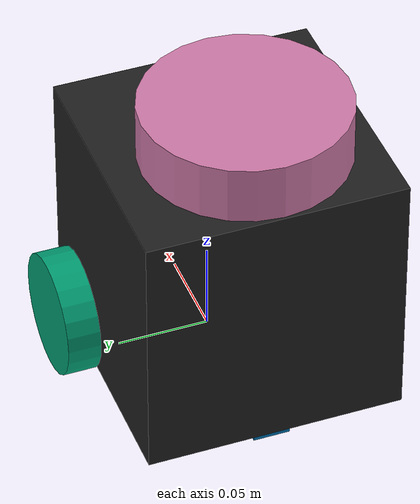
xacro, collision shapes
<?xml version="1.0" ?>
<robot name="turtlebot3_burger"
  xmlns:xacro="http://ros.org/wiki/xacro">
  <xacro:include filename="$(find custom_robot_description)/urdf/common_properties.urdf"/>

  <xacro:arg name="namespace" default=""/>
  <xacro:property name="namespace" value="$(arg namespace)"/>

  <link name="${namespace}base_footprint"/>

  <joint name="${namespace}base_joint" type="fixed">
    <parent link="${namespace}base_footprint"/>
    <child link="${namespace}base_link"/>
    <origin xyz="0.0 0.0 0.010" rpy="0 0 0"/>
  </joint>

  <link name="${namespace}base_link">
    <visual>
      <origin xyz="-0.032 0 0.0" rpy="0 0 0"/>
      <geometry>
        <mesh filename="package://custom_robot_description/meshes/bases/burger_base.stl" scale="0.001 0.001 0.001"/>
      </geometry>
      <material name="light_black"/>
    </visual>

    <collision>
      <origin xyz="-0.032 0 0.070" rpy="0 0 0"/>
      <geometry>
        <box size="0.140 0.140 0.143"/>
      </geometry>
    </collision>

    <inertial>
      <origin xyz="0 0 0" rpy="0 0 0"/>
      <mass value="8.2573504e-01"/>
      <inertia ixx="2.2124416e-03" ixy="-1.2294101e-05" ixz="3.4938785e-05" iyy="2.1193702e-03" iyz="-5.0120904e-06" izz="2.0064271e-03" />
    </inertial>
  </link>

  <joint name="${namespace}wheel_left_joint" type="continuous">
    <parent link="${namespace}base_link"/>
    <child link="${namespace}wheel_left_link"/>
    <origin xyz="0.0 0.08 0.023" rpy="-1.57 0 0"/>
    <axis xyz="0 0 1"/>
  </joint>

  <link name="${namespace}wheel_left_link">
    <visual>
      <origin xyz="0 0 0" rpy="1.57 0 0"/>
      <geometry>
        <mesh filename="package://custom_robot_description/meshes/wheels/left_tire.stl" scale="0.001 0.001 0.001"/>
      </geometry>
      <material name="dark"/>
    </visual>

    <collision>
      <origin xyz="0 0 0" rpy="0 0 0"/>
      <geometry>
        <cylinder length="0.018" radius="0.033"/>
      </geometry>
    </collision>

    <inertial>
      <origin xyz="0 0 0" />
      <mass value="2.8498940e-02" />
      <inertia ixx="1.1175580e-05" ixy="-4.2369783e-11" ixz="-5.9381719e-09" iyy="1.1192413e-05" iyz="-1.4400107e-11" izz="2.0712558e-05" />
    </inertial>
  </link>

  <joint name="${namespace}wheel_right_joint" type="continuous">
    <parent link="${namespace}base_link"/>
    <child link="${namespace}wheel_right_link"/>
    <origin xyz="0.0 -0.080 0.023" rpy="-1.57 0 0"/>
    <axis xyz="0 0 1"/>
  </joint>

  <link name="${namespace}wheel_right_link">
    <visual>
      <origin xyz="0 0 0" rpy="1.57 0 0"/>
      <geometry>
        <mesh filename="package://custom_robot_description/meshes/wheels/right_tire.stl" scale="0.001 0.001 0.001"/>
      </geometry>
      <material name="dark"/>
    </visual>

    <collision>
      <origin xyz="0 0 0" rpy="0 0 0"/>
      <geometry>
        <cylinder length="0.018" radius="0.033"/>
      </geometry>
    </collision>

    <inertial>
      <origin xyz="0 0 0" />
      <mass value="2.8498940e-02" />
      <inertia ixx="1.1175580e-05" ixy="-4.2369783e-11" ixz="-5.9381719e-09" iyy="1.1192413e-05" iyz="-1.4400107e-11" izz="2.0712558e-05" />
    </inertial>
  </link>

  <joint name="${namespace}caster_back_joint" type="fixed">
    <parent link="${namespace}base_link"/>
    <child link="${namespace}caster_back_link"/>
    <origin xyz="-0.081 0 -0.004" rpy="-1.57 0 0"/>
  </joint>

  <link name="${namespace}caster_back_link">
    <collision>
      <origin xyz="0 0.001 0" rpy="0 0 0"/>
      <geometry>
        <box size="0.030 0.009 0.020"/>
      </geometry>
    </collision>

    <inertial>
      <origin xyz="0 0 0" />
      <mass value="0.005" />
      <inertia ixx="0.001" ixy="0.0" ixz="0.0" iyy="0.001" iyz="0.0" izz="0.001" />
    </inertial>
  </link>

  <joint name="${namespace}imu_joint" type="fixed">
    <parent link="${namespace}base_link"/>
    <child link="${namespace}imu_link"/>
    <origin xyz="-0.032 0 0.068" rpy="0 0 0"/>
  </joint>

  <link name="${namespace}imu_link"/>

  <joint name="${namespace}scan_joint" type="fixed">
    <parent link="${namespace}base_link"/>
    <child link="${namespace}base_scan"/>
    <origin xyz="-0.070 0 0.172" rpy="0 0 0"/>
  </joint>

  <link name="${namespace}base_scan">
    <visual>
      <origin xyz="0 0 0.0" rpy="0 0 0"/>
      <geometry>
        <mesh filename="package://custom_robot_description/meshes/sensors/lds.stl" scale="0.001 0.001 0.001"/>
      </geometry>
      <material name="dark"/>
    </visual>

    <collision>
      <origin xyz="0.015 0 -0.0065" rpy="0 0 0"/>
      <geometry>
        <cylinder length="0.0315" radius="0.055"/>
      </geometry>
    </collision>

    <inertial>
      <mass value="0.114" />
      <origin xyz="0 0 0" />
      <inertia ixx="0.001" ixy="0.0" ixz="0.0" iyy="0.001" iyz="0.0" izz="0.001" />
    </inertial>
  </link>

</robot>
